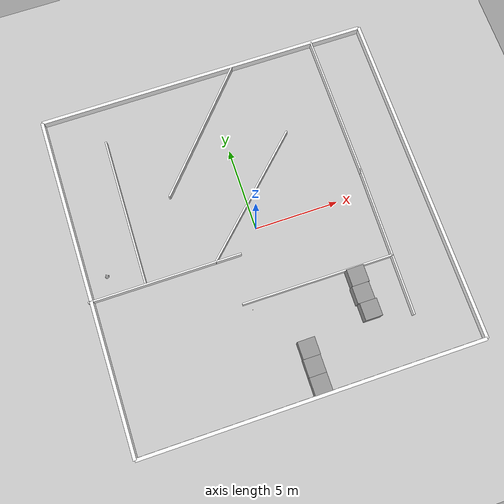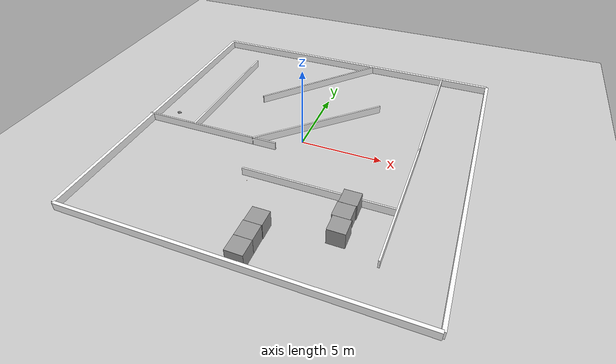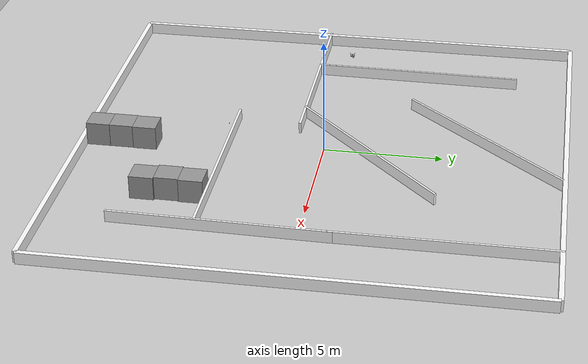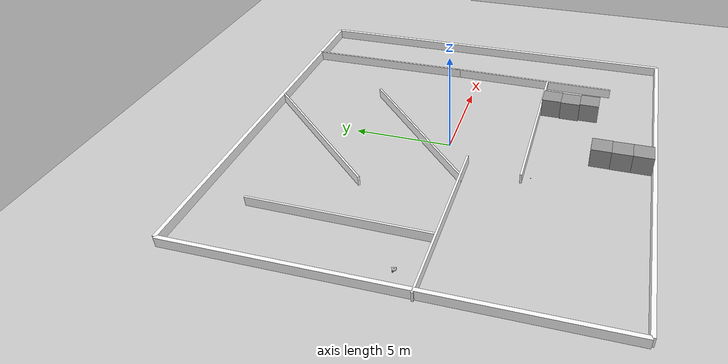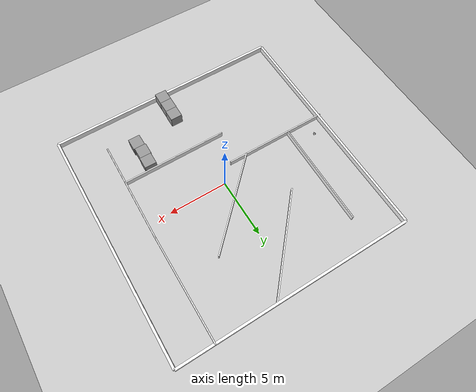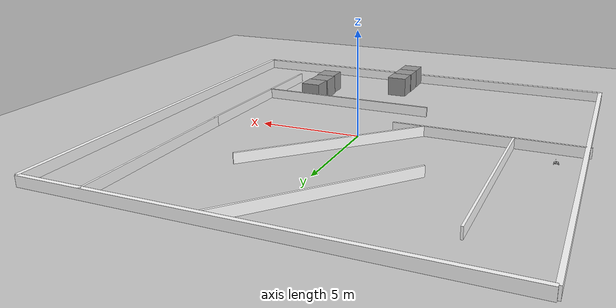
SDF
<sdf version="1.7">
 <world name="room20x20">
  <gravity>0 0 -9.81</gravity>
  <light name="sun" type="directional">
   <pose>0 0 10 0 -0 0</pose>
   <diffuse>0.8 0.8 0.8 1</diffuse>
   <specular>0.2 0.2 0.2 1</specular>
   <attenuation>
    <range>1000</range>
    <constant>0.9</constant>
    <linear>0.01</linear>
    <quadratic>0.001</quadratic>
   </attenuation>
   <direction>-0.5 0.1 -0.9</direction>
   <spot><inner_angle>0</inner_angle><outer_angle>0</outer_angle><falloff>0</falloff></spot>
  </light>
  <model name="ground_plane">
   <static>1</static>
   <link name="link">
    <collision name="collision">
     <geometry><plane><normal>0 0 1</normal><size>100 100</size></plane></geometry>
    </collision>
    <visual name="visual">
     <cast_shadows>0</cast_shadows>
     <geometry><plane><normal>0 0 1</normal><size>100 100</size></plane></geometry>
     <material>
      <script><uri>file://media/materials/scripts/gazebo.material</uri><name>Gazebo/Grey</name></script>
     </material>
    </visual>
   </link>
  </model>
  <model name="outer_walls">
   <static>1</static>
   <link name="walls">
    <collision name="north_col">
     <geometry><box><size>20.2 0.2 0.5</size></box></geometry>
     <pose>0 10.1 0.25 0 -0 0</pose>
    </collision>
    <visual name="north_vis">
     <geometry><box><size>20.2 0.2 0.5</size></box></geometry>
     <pose>0 10.1 0.25 0 -0 0</pose>
     <material><ambient>1 1 1 1</ambient><diffuse>1 1 1 1</diffuse></material>
    </visual>
    <collision name="south_col">
     <geometry><box><size>20.2 0.2 0.5</size></box></geometry>
     <pose>0 -10.1 0.25 0 -0 0</pose>
    </collision>
    <visual name="south_vis">
     <geometry><box><size>20.2 0.2 0.5</size></box></geometry>
     <pose>0 -10.1 0.25 0 -0 0</pose>
     <material><ambient>1 1 1 1</ambient><diffuse>1 1 1 1</diffuse></material>
    </visual>
    <collision name="east_col">
     <geometry><box><size>0.2 20.2 0.5</size></box></geometry>
     <pose>10.1 0 0.25 0 -0 0</pose>
    </collision>
    <visual name="east_vis">
     <geometry><box><size>0.2 20.2 0.5</size></box></geometry>
     <pose>10.1 0 0.25 0 -0 0</pose>
     <material><ambient>1 1 1 1</ambient><diffuse>1 1 1 1</diffuse></material>
    </visual>
    <collision name="west_col">
     <geometry><box><size>0.2 20.2 0.5</size></box></geometry>
     <pose>-10.1 0 0.25 0 -0 0</pose>
    </collision>
    <visual name="west_vis">
     <geometry><box><size>0.2 20.2 0.5</size></box></geometry>
     <pose>-10.1 0 0.25 0 -0 0</pose>
     <material><ambient>1 1 1 1</ambient><diffuse>1 1 1 1</diffuse></material>
    </visual>
   </link>
  </model>
  <model name="mid_vertical">
   <pose>-1.2117 6.66245 0 0 -0 2.41542</pose>
   <static>1</static>
   <link name="mid_v_link">
    <collision name="mid_v_col"><geometry><box><size>0.1 9 0.5</size></box></geometry></collision>
    <visual name="mid_v_vis">
     <geometry><box><size>0.1 9 0.5</size></box></geometry>
     <material><ambient>1 1 1 1</ambient><diffuse>1 1 1 1</diffuse></material>
    </visual>
    <pose>0 0 0.25 0 -0 0</pose>
   </link>
  </model>
  <magnetic_field>6e-06 2.3e-05 -4.2e-05</magnetic_field>
  <atmosphere type="adiabatic"/>
  <physics type="ode">
   <max_step_size>0.001</max_step_size>
   <real_time_factor>1</real_time_factor>
   <real_time_update_rate>1000</real_time_update_rate>
  </physics>
  <scene><ambient>0.4 0.4 0.4 1</ambient><background>0.7 0.7 0.7 1</background><shadows>1</shadows></scene>
  <audio><device>default</device></audio>
  <spherical_coordinates>
   <surface_model>EARTH_WGS84</surface_model>
   <latitude_deg>0</latitude_deg>
   <longitude_deg>0</longitude_deg>
   <elevation>0</elevation>
   <heading_deg>0</heading_deg>
  </spherical_coordinates>
  <model name="mid_vertical_clone">
   <static>1</static>
   <link name="mid_v_link">
    <collision name="mid_v_col"><geometry><box><size>0.1 9 0.5</size></box></geometry></collision>
    <visual name="mid_v_vis">
     <geometry><box><size>0.1 9 0.5</size></box></geometry>
     <material><ambient>1 1 1 1</ambient><diffuse>1 1 1 1</diffuse></material>
    </visual>
    <pose>0 0 0.25 0 -0 0</pose>
   </link>
   <pose>-6.88121 3.2591 0 0 0 -0.014825</pose>
  </model>
  <model name="mid_vertical_clone_clone">
   <static>1</static>
   <link name="mid_v_link">
    <collision name="mid_v_col"><geometry><box><size>0.1 9 0.5</size></box></geometry></collision>
    <visual name="mid_v_vis">
     <geometry><box><size>0.1 9 0.5</size></box></geometry>
     <material><ambient>1 1 1 1</ambient><diffuse>1 1 1 1</diffuse></material>
    </visual>
    <pose>0 0 0.25 0 -0 0</pose>
   </link>
   <pose>6.93624 5.67757 0 0 -0 0</pose>
  </model>
  <model name="mid_vertical_clone_clone_1">
   <static>1</static>
   <link name="mid_v_link">
    <collision name="mid_v_col"><geometry><box><size>0.1 9 0.5</size></box></geometry></collision>
    <visual name="mid_v_vis">
     <geometry><box><size>0.1 9 0.5</size></box></geometry>
     <material><ambient>1 1 1 1</ambient><diffuse>1 1 1 1</diffuse></material>
    </visual>
    <pose>0 0 0.25 0 -0 0</pose>
   </link>
   <pose>-5.78626 -1.22677 0 0 -0 1.56792</pose>
  </model>
  <model name="wood_cube_2_5cm">
   <link name="link">
    <pose>0 0 0.0125 0 -0 0</pose>
    <inertial>
     <mass>0.0073</mass>
     <inertia>
      <ixx>7.60417e-07</ixx>
      <ixy>0</ixy>
      <ixz>0</ixz>
      <iyy>7.60417e-07</iyy>
      <iyz>0</iyz>
      <izz>7.60417e-07</izz>
     </inertia>
    </inertial>
    <collision name="collision">
     <geometry><box><size>0.025 0.025 0.025</size></box></geometry>
     <surface>
      <contact>
       <poissons_ratio>0.347</poissons_ratio>
       <elastic_modulus>8.8e+09</elastic_modulus>
       <ode><kp>100000</kp><kd>100</kd><max_vel>100</max_vel><min_depth>0.001</min_depth></ode>
      </contact>
      <friction>
       <torsional>
        <coefficient>1</coefficient>
        <use_patch_radius>0</use_patch_radius>
        <surface_radius>0.01</surface_radius>
       </torsional>
      </friction>
     </surface>
    </collision>
    <visual name="visual">
     <geometry><box><size>0.025 0.025 0.025</size></box></geometry>
     <material>
      <script><uri>file://media/materials/scripts/gazebo.material</uri><name>Gazebo/Wood</name></script>
     </material>
    </visual>
   </link>
   <pose>-1.66705 -4.43143 0.0115 2.83222 1.57079 3.14159</pose>
  </model>
  <model name="mid_vertical_clone_clone_clone">
   <static>1</static>
   <link name="mid_v_link">
    <collision name="mid_v_col"><geometry><box><size>0.1 9 0.5</size></box></geometry></collision>
    <visual name="mid_v_vis">
     <geometry><box><size>0.1 9 0.5</size></box></geometry>
     <material><ambient>1 1 1 1</ambient><diffuse>1 1 1 1</diffuse></material>
    </visual>
    <pose>0 0 0.25 0 -0 0</pose>
   </link>
   <pose>2.37705 -4.01793 0 0 -0 1.56838</pose>
  </model>
  <model name="mid_vertical_clone_clone_clone_clone">
   <static>1</static>
   <link name="mid_v_link">
    <collision name="mid_v_col"><geometry><box><size>0.1 9 0.5</size></box></geometry></collision>
    <visual name="mid_v_vis">
     <geometry><box><size>0.1 9 0.5</size></box></geometry>
     <material><ambient>1 1 1 1</ambient><diffuse>1 1 1 1</diffuse></material>
    </visual>
    <pose>0 0 0.25 0 -0 0</pose>
   </link>
   <pose>0.387963 1.87477 0 0 -0 2.34247</pose>
  </model>
  <model name="unit_box">
   <pose>4.46266 -4.59439 0.499995 -1e-05 -0 -0.003439</pose>
   <link name="link">
    <inertial>
     <mass>1</mass>
     <inertia>
      <ixx>0.166667</ixx>
      <ixy>0</ixy>
      <ixz>0</ixz>
      <iyy>0.166667</iyy>
      <iyz>0</iyz>
      <izz>0.166667</izz>
     </inertia>
    </inertial>
    <collision name="collision"><geometry><box><size>1 1 1</size></box></geometry></collision>
    <visual name="visual">
     <geometry><box><size>1 1 1</size></box></geometry>
     <material>
      <script><name>Gazebo/Grey</name><uri>file://media/materials/scripts/gazebo.material</uri></script>
     </material>
    </visual>
   </link>
  </model>
  <model name="unit_box_0">
   <pose>4.41237 -5.59449 0.499995 0 1e-05 -0.003952</pose>
   <link name="link">
    <inertial>
     <mass>1</mass>
     <inertia>
      <ixx>0.166667</ixx>
      <ixy>0</ixy>
      <ixz>0</ixz>
      <iyy>0.166667</iyy>
      <iyz>0</iyz>
      <izz>0.166667</izz>
     </inertia>
    </inertial>
    <collision name="collision"><geometry><box><size>1 1 1</size></box></geometry></collision>
    <visual name="visual">
     <geometry><box><size>1 1 1</size></box></geometry>
     <material>
      <script><name>Gazebo/Grey</name><uri>file://media/materials/scripts/gazebo.material</uri></script>
     </material>
    </visual>
   </link>
  </model>
  <model name="unit_box_1">
   <pose>0.513546 -9.49995 0.499995 1e-05 -0 7.7e-05</pose>
   <link name="link">
    <inertial>
     <mass>1</mass>
     <inertia>
      <ixx>0.166667</ixx>
      <ixy>0</ixy>
      <ixz>0</ixz>
      <iyy>0.166667</iyy>
      <iyz>0</iyz>
      <izz>0.166667</izz>
     </inertia>
    </inertial>
    <collision name="collision"><geometry><box><size>1 1 1</size></box></geometry></collision>
    <visual name="visual">
     <geometry><box><size>1 1 1</size></box></geometry>
     <material>
      <script><name>Gazebo/Grey</name><uri>file://media/materials/scripts/gazebo.material</uri></script>
     </material>
    </visual>
   </link>
  </model>
  <model name="unit_box_2">
   <pose>0.512873 -8.4994 0.499995 1e-05 -0 0.000171</pose>
   <link name="link">
    <inertial>
     <mass>1</mass>
     <inertia>
      <ixx>0.166667</ixx>
      <ixy>0</ixy>
      <ixz>0</ixz>
      <iyy>0.166667</iyy>
      <iyz>0</iyz>
      <izz>0.166667</izz>
     </inertia>
    </inertial>
    <collision name="collision"><geometry><box><size>1 1 1</size></box></geometry></collision>
    <visual name="visual">
     <geometry><box><size>1 1 1</size></box></geometry>
     <material>
      <script><name>Gazebo/Grey</name><uri>file://media/materials/scripts/gazebo.material</uri></script>
     </material>
    </visual>
   </link>
  </model>
  <model name="unit_box_3">
   <pose>0.535404 -7.49918 0.499995 -0 -1e-05 -0.000158</pose>
   <link name="link">
    <inertial>
     <mass>1</mass>
     <inertia>
      <ixx>0.166667</ixx>
      <ixy>0</ixy>
      <ixz>0</ixz>
      <iyy>0.166667</iyy>
      <iyz>0</iyz>
      <izz>0.166667</izz>
     </inertia>
    </inertial>
    <collision name="collision"><geometry><box><size>1 1 1</size></box></geometry></collision>
    <visual name="visual">
     <geometry><box><size>1 1 1</size></box></geometry>
     <material>
      <script><name>Gazebo/Grey</name><uri>file://media/materials/scripts/gazebo.material</uri></script>
     </material>
    </visual>
   </link>
  </model>
  <model name="unit_box_4">
   <pose>4.49235 -6.59552 0.499995 -1e-05 -0 -0.004472</pose>
   <link name="link">
    <inertial>
     <mass>1</mass>
     <inertia>
      <ixx>0.166667</ixx>
      <ixy>0</ixy>
      <ixz>0</ixz>
      <iyy>0.166667</iyy>
      <iyz>0</iyz>
      <izz>0.166667</izz>
     </inertia>
    </inertial>
    <collision name="collision"><geometry><box><size>1 1 1</size></box></geometry></collision>
    <visual name="visual">
     <geometry><box><size>1 1 1</size></box></geometry>
     <material>
      <script><name>Gazebo/Grey</name><uri>file://media/materials/scripts/gazebo.material</uri></script>
     </material>
    </visual>
   </link>
  </model>
  <model name="explorebot">
   <link name="base_footprint">
    <inertial>
     <pose>0.002308 0 0.404577 0 -0 0</pose>
     <mass>0.52</mass>
     <inertia>
      <ixx>0.014299</ixx>
      <ixy>0</ixy>
      <ixz>0.000102692</ixz>
      <iyy>0.0163682</iyy>
      <iyz>0</iyz>
      <izz>0.0238692</izz>
     </inertia>
    </inertial>
    <collision name="base_footprint_fixed_joint_lump__base_link_collision">
     <pose>0 0 0.36 0 -0 0</pose>
     <geometry><cylinder><length>0.12</length><radius>0.1</radius></cylinder></geometry>
    </collision>
    <collision name="base_footprint_fixed_joint_lump__caster_link_collision_1">
     <pose>0.06 0 0.319 1.57079 -0 0</pose>
     <geometry><sphere><radius>0.032</radius></sphere></geometry>
     <surface>
      <contact><ode><kp>1e+06</kp><kd>10</kd></ode></contact>
      <friction><ode><mu>0</mu><mu2>0</mu2></ode></friction>
     </surface>
    </collision>
    <collision name="base_footprint_fixed_joint_lump__gps_link_collision_2">
     <pose>-0.1 0 0.46 0 -0 0</pose>
     <geometry><box><size>0.02 0.02 0.02</size></box></geometry>
    </collision>
    <collision name="base_footprint_fixed_joint_lump__imu_link_collision_3">
     <pose>0 0 0.38 0 -0 0</pose>
     <geometry><box><size>0.02 0.02 0.02</size></box></geometry>
    </collision>
    <collision name="base_footprint_fixed_joint_lump__velodyne_collision_4">
     <pose>0 0 0.38 0 -0 0</pose>
     <geometry><cylinder><length>0.02</length><radius>0.02</radius></cylinder></geometry>
    </collision>
    <collision name="base_footprint_fixed_joint_lump__navsat_link_collision_5">
     <pose>0.1 0 0.46 0 -0 0</pose>
     <geometry><box><size>0.02 0.02 0.02</size></box></geometry>
    </collision>
    <visual name="base_footprint_fixed_joint_lump__base_link_visual">
     <pose>0 0 0.36 0 -0 0</pose>
     <geometry><cylinder><length>0.04</length><radius>0.1</radius></cylinder></geometry>
    </visual>
    <visual name="base_footprint_fixed_joint_lump__caster_link_visual_1">
     <pose>0.06 0 0.319 1.57079 -0 0</pose>
     <geometry><sphere><radius>0.032</radius></sphere></geometry>
     <material>
      <script><name>Gazebo/Black</name><uri>file://media/materials/scripts/gazebo.material</uri></script>
     </material>
    </visual>
    <visual name="base_footprint_fixed_joint_lump__gps_link_visual_2">
     <pose>-0.1 0 0.46 0 -0 0</pose>
     <geometry><box><size>0.02 0.02 0.02</size></box></geometry>
    </visual>
    <visual name="base_footprint_fixed_joint_lump__imu_link_visual_3">
     <pose>0 0 0.38 0 -0 0</pose>
     <geometry><box><size>0.02 0.02 0.02</size></box></geometry>
    </visual>
    <visual name="base_footprint_fixed_joint_lump__velodyne_visual_4">
     <pose>0 0 0.38 0 -0 0</pose>
     <geometry><cylinder><length>0.02</length><radius>0.02</radius></cylinder></geometry>
    </visual>
    <visual name="base_footprint_fixed_joint_lump__navsat_link_visual_5">
     <pose>0.1 0 0.46 0 -0 0</pose>
     <geometry><box><size>0.02 0.02 0.02</size></box></geometry>
    </visual>
    <sensor name="my_gpss" type="gps">
     <always_on>1</always_on>
     <update_rate>10</update_rate>
     <plugin name="my_gps_plugins" filename="libgazebo_ros_gps_sensor.so">
      <ros><namespace>/gps2</namespace><remapping>~/out:=/gps/fix2</remapping></ros>
     </plugin>
     <pose>-0.1 0 0.46 0 -0 0</pose>
    </sensor>
    <sensor name="imu_sensor" type="imu">
     <plugin name="imu_plugin" filename="libgazebo_ros_imu_sensor.so">
      <ros><namespace>/</namespace><remapping>~/out:=/imu</remapping></ros>
      <initial_orientation_as_reference>0</initial_orientation_as_reference>
     </plugin>
     <always_on>1</always_on>
     <update_rate>500</update_rate>
     <visualize>1</visualize>
     <imu>
      <angular_velocity>
       <x>
        <noise type="gaussian">
         <mean>0</mean>
         <stddev>0.0002</stddev>
         <bias_mean>7.5e-06</bias_mean>
         <bias_stddev>8e-07</bias_stddev>
        </noise>
       </x>
       <y>
        <noise type="gaussian">
         <mean>0</mean>
         <stddev>0.0002</stddev>
         <bias_mean>7.5e-06</bias_mean>
         <bias_stddev>8e-07</bias_stddev>
        </noise>
       </y>
       <z>
        <noise type="gaussian">
         <mean>0</mean>
         <stddev>0.0002</stddev>
         <bias_mean>7.5e-06</bias_mean>
         <bias_stddev>8e-07</bias_stddev>
        </noise>
       </z>
      </angular_velocity>
      <linear_acceleration>
       <x>
        <noise type="gaussian">
         <mean>0</mean>
         <stddev>0.017</stddev>
         <bias_mean>0.1</bias_mean>
         <bias_stddev>0.001</bias_stddev>
        </noise>
       </x>
       <y>
        <noise type="gaussian">
         <mean>0</mean>
         <stddev>0.017</stddev>
         <bias_mean>0.1</bias_mean>
         <bias_stddev>0.001</bias_stddev>
        </noise>
       </y>
       <z>
        <noise type="gaussian">
         <mean>0</mean>
         <stddev>0.017</stddev>
         <bias_mean>0.1</bias_mean>
         <bias_stddev>0.001</bias_stddev>
        </noise>
       </z>
      </linear_acceleration>
     </imu>
     <pose>0 0 0.38 0 -0 0</pose>
    </sensor>
    <sensor name="laser_sensor" type="ray">
     <always_on>1</always_on>
     <visualize>0</visualize>
     <update_rate>10</update_rate>
     <ray>
      <scan>
       <horizontal>
        <samples>120</samples>
        <resolution>1</resolution>
        <min_angle>0</min_angle>
        <max_angle>6.28</max_angle>
       </horizontal>
       <vertical>
        <samples>16</samples>
        <resolution>1</resolution>
        <min_angle>0</min_angle>
        <max_angle>0.4</max_angle>
       </vertical>
      </scan>
      <range><min>0.12</min><max>40.5</max><resolution>0.015</resolution></range>
      <noise><type>gaussian</type><mean>0</mean><stddev>0.01</stddev></noise>
     </ray>
     <plugin name="my_ray_sensor_plugin" filename="libgazebo_ros_ray_sensor.so">
      <ros><namespace>/ray</namespace><remapping>~/out:=/points_raw</remapping></ros>
      <output_type>sensor_msgs/PointCloud2</output_type>
      <min_intensity>100.0</min_intensity>
      <frame_name>velodyne</frame_name>
     </plugin>
     <pose>0 0 0.38 0 -0 0</pose>
    </sensor>
    <sensor name="my_gps" type="gps">
     <always_on>1</always_on>
     <update_rate>10</update_rate>
     <plugin name="my_gps_plugin" filename="libgazebo_ros_gps_sensor.so">
      <ros><namespace>/gps1</namespace><remapping>~/out:=/gps/fix</remapping></ros>
     </plugin>
     <pose>0.1 0 0.46 0 -0 0</pose>
    </sensor>
   </link>
   <joint name="left_wheel_joint" type="revolute">
    <pose relative_to="base_footprint">-0.04 0.1 0.32 0 -0 0</pose>
    <parent>base_footprint</parent>
    <child>left_wheel_link</child>
    <axis>
     <xyz>0 1 0</xyz>
     <limit><lower>-1e+16</lower><upper>1e+16</upper></limit>
     <dynamics><spring_reference>0</spring_reference><spring_stiffness>0</spring_stiffness></dynamics>
    </axis>
   </joint>
   <link name="left_wheel_link">
    <pose relative_to="left_wheel_joint">0 0 0 0 -0 0</pose>
    <inertial>
     <mass>0.2</mass>
     <inertia>
      <ixx>0.000190417</ixx>
      <ixy>0</ixy>
      <ixz>0</ixz>
      <iyy>0.0001904</iyy>
      <iyz>0</iyz>
      <izz>0.00036</izz>
     </inertia>
    </inertial>
    <collision name="left_wheel_link_collision">
     <pose>0 0 0 1.57079 -0 0</pose>
     <geometry><cylinder><length>0.04</length><radius>0.032</radius></cylinder></geometry>
    </collision>
    <visual name="left_wheel_link_visual">
     <pose>0 0 0 1.57079 -0 0</pose>
     <geometry><cylinder><length>0.04</length><radius>0.032</radius></cylinder></geometry>
    </visual>
   </link>
   <joint name="right_wheel_joint" type="revolute">
    <pose relative_to="base_footprint">-0.04 -0.1 0.32 0 -0 0</pose>
    <parent>base_footprint</parent>
    <child>right_wheel_link</child>
    <axis>
     <xyz>0 1 0</xyz>
     <limit><lower>-1e+16</lower><upper>1e+16</upper></limit>
     <dynamics><spring_reference>0</spring_reference><spring_stiffness>0</spring_stiffness></dynamics>
    </axis>
   </joint>
   <link name="right_wheel_link">
    <pose relative_to="right_wheel_joint">0 0 0 0 -0 0</pose>
    <inertial>
     <mass>0.2</mass>
     <inertia>
      <ixx>0.000190417</ixx>
      <ixy>0</ixy>
      <ixz>0</ixz>
      <iyy>0.0001904</iyy>
      <iyz>0</iyz>
      <izz>0.00036</izz>
     </inertia>
    </inertial>
    <collision name="right_wheel_link_collision">
     <pose>0 0 0 1.57079 -0 0</pose>
     <geometry><cylinder><length>0.04</length><radius>0.032</radius></cylinder></geometry>
    </collision>
    <visual name="right_wheel_link_visual">
     <pose>0 0 0 1.57079 -0 0</pose>
     <geometry><cylinder><length>0.04</length><radius>0.032</radius></cylinder></geometry>
    </visual>
   </link>
   <static>0</static>
   <plugin name="diff_drive" filename="libgazebo_ros_diff_drive.so">
    <ros><namespace>/</namespace><remapping>cmd_vel:=cmd_vel</remapping><remapping>odom:=/odom</remapping></ros>
    <update_rate>500</update_rate>
    <left_joint>left_wheel_joint</left_joint>
    <right_joint>right_wheel_joint</right_joint>
    <wheel_separation>0.2</wheel_separation>
    <wheel_diameter>0.065</wheel_diameter>
    <max_wheel_torque>60</max_wheel_torque>
    <max_wheel_acceleration>3.0</max_wheel_acceleration>
    <publish_odom>1</publish_odom>
    <publish_odom_tf>fasle</publish_odom_tf>
    <publish_wheel_tf>fasle</publish_wheel_tf>
    <odometry_frame>odom</odometry_frame>
    <robot_base_frame>base_link</robot_base_frame>
   </plugin>
   <pose>-8.93604 -0.030749 -0.287585 1e-06 -0.009978 -1.38962</pose>
  </model>
  <model name="mid_vertical_clone_clone_clone_clone_clone">
   <static>1</static>
   <link name="mid_v_link">
    <collision name="mid_v_col"><geometry><box><size>0.1 9 0.5</size></box></geometry></collision>
    <visual name="mid_v_vis">
     <geometry><box><size>0.1 9 0.5</size></box></geometry>
     <material><ambient>1 1 1 1</ambient><diffuse>1 1 1 1</diffuse></material>
    </visual>
    <pose>0 0 0.25 0 -0 0</pose>
   </link>
   <pose>6.86291 -3.091 0 0 -0 3.12366</pose>
  </model>
 </world>
</sdf>
